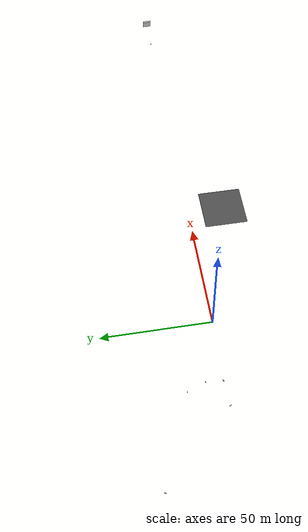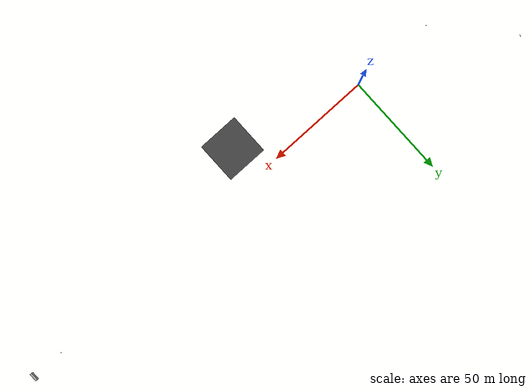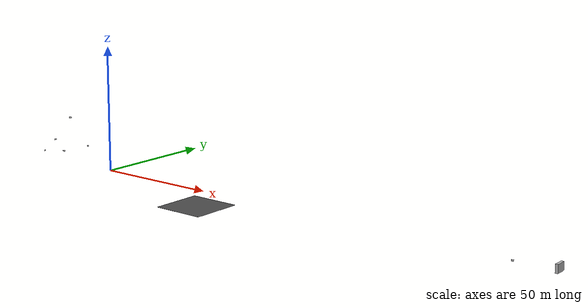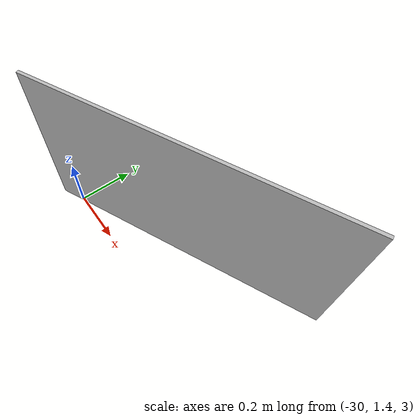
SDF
<sdf version="1.6">
 <world name="default">
  <scene>
   <grid>false</grid>
   <origin_visual>false</origin_visual>
   <ambient>0.592 0.624 0.635 1</ambient>
   <sky><clouds><speed>12</speed></clouds></sky>
   <background>0.35 0.35 0.35 1.0</background>
  </scene>
  <physics name="default_physics" default="0" type="ode">
   <max_step_size>0.005</max_step_size>
   <real_time_factor>1</real_time_factor>
   <real_time_update_rate>200</real_time_update_rate>
  </physics>
  <light type="directional" name="sun">
   <pose>0 0 1000 0 0 0</pose>
   <diffuse>0.8 0.8 0.8 1</diffuse>
   <specular>0.5 0.5 0.5 1</specular>
   <attenuation>
    <range>1000</range>
    <constant>0.9</constant>
    <linear>0.01</linear>
    <quadratic>0.001</quadratic>
   </attenuation>
   <direction>-0.5 0.1 -0.4</direction>
  </light>
  <model name="ground_plane">
   <static>true</static>
   <link name="link">
    <collision name="collision">
     <geometry><plane><normal>0 0 1</normal><size>100 100</size></plane></geometry>
     <surface><friction><ode><mu>100</mu><mu2>50</mu2></ode></friction></surface>
    </collision>
   </link>
  </model>
  <model name="asphalt_plane_74">
   <static>true</static>
   <pose>61.581
    -16.664
    0
    0
    0
    0</pose>
   <link name="link">
    <visual name="visual">
     <geometry><box><size>20
            20
            0.05</size></box></geometry>
     <material>
      <script>
       <uri>model://asphalt_plane/materials/scripts</uri>
       <uri>model://asphalt_plane/materials/textures</uri>
       <name>vrc/asphalt</name>
      </script>
     </material>
    </visual>
   </link>
  </model>
  <include><name>slide-0</name><pose>-31.97 17.09 1.99 0 0 0</pose><uri>model://slide-0</uri></include>
  <include><name>slide-1</name><pose>-35 10.5 15 0 0 0.3597</pose><uri>model://slide-1</uri></include>
  <include><name>slide-10</name><pose>-29.6 1.57 3.03 0 0 0.43</pose><uri>model://slide-10</uri></include>
  <include><name>slide-11</name><pose>-29.6 1.57 3.03 0 0 0.43</pose><uri>model://slide-11</uri></include>
  <include><name>slide-12</name><pose>-29.6 1.57 3.03 0 0 0.43</pose><uri>model://slide-12</uri></include>
  <include><name>slide-13</name><pose>-70.3 32.6 -3.5 0 0 1.15</pose><uri>model://slide-13</uri></include>
  <include><name>slide-14</name><pose>180 0 0 0 0 0</pose><uri>model://slide-14</uri></include>
  <include><name>slide-15</name><pose>196 0 0 0 0 -1.57</pose><uri>model://slide-15</uri></include>
  <include><name>banner-0</name><pose>-40.57 0.72 1.66 0 0 -1.08</pose><uri>model://banner-0</uri></include>
 </world>
</sdf>

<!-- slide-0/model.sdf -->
<sdf version='1.6'>
<model name='slide-0'>
  <static>1</static>
  <link name='link'>
    <pose frame=''>0 0 0.28125 0 -0 0</pose>
    <collision name='collision'>
      <geometry>
        <box>
          <size>1 0.01 0.5625</size>
        </box>
      </geometry>
    </collision>
    <visual name='visual'>
      <geometry>
        <box>
          <size>1 0.01 0.5625</size>
        </box>
      </geometry>
      <material>
        <script>
          <uri>model://slide-0/materials/scripts</uri>
          <uri>model://slide-0/materials/textures</uri>
          <name>Slides/slide_0</name>
        </script>
      </material>
    </visual>
  </link>
</model>
</sdf>

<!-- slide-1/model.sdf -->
<sdf version='1.6'>
<model name='slide-1'>
  <static>1</static>
  <link name='link'>
    <pose frame=''>0 0 0.28125 0 -0 0</pose>
    <collision name='collision'>
      <geometry>
        <box>
          <size>1 0.01 0.5625</size>
        </box>
      </geometry>
    </collision>
    <visual name='visual'>
      <geometry>
        <box>
          <size>1 0.01 0.5625</size>
        </box>
      </geometry>
      <material>
        <script>
          <uri>model://slide-1/materials/scripts</uri>
          <uri>model://slide-1/materials/textures</uri>
          <name>Slides/slide_1</name>
        </script>
      </material>
    </visual>
  </link>
</model>
</sdf>

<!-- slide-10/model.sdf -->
<sdf version='1.6'>
<model name='slide-10'>
  <static>1</static>
  <link name='link'>
    <pose frame=''>0 0 0.28125 0 -0 0</pose>
    <collision name='collision'>
      <geometry>
        <box>
          <size>1 0.01 0.5625</size>
        </box>
      </geometry>
    </collision>
    <visual name='visual'>
      <geometry>
        <box>
          <size>1 0.01 0.5625</size>
        </box>
      </geometry>
      <material>
        <script>
          <uri>model://slide-10/materials/scripts</uri>
          <uri>model://slide-10/materials/textures</uri>
          <name>Slides/slide_10</name>
        </script>
      </material>
    </visual>
  </link>
</model>
</sdf>

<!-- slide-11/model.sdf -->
<sdf version='1.6'>
<model name='slide-11'>
  <static>1</static>
  <link name='link'>
    <pose frame=''>0 0 0.28125 0 -0 0</pose>
    <collision name='collision'>
      <geometry>
        <box>
          <size>1 0.01 0.5625</size>
        </box>
      </geometry>
    </collision>
    <visual name='visual'>
      <geometry>
        <box>
          <size>1 0.01 0.5625</size>
        </box>
      </geometry>
      <material>
        <script>
          <uri>model://slide-11/materials/scripts</uri>
          <uri>model://slide-11/materials/textures</uri>
          <name>Slides/slide_11</name>
        </script>
      </material>
    </visual>
  </link>
</model>
</sdf>

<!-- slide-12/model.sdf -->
<sdf version='1.6'>
<model name='slide-12'>
  <static>1</static>
  <link name='link'>
    <pose frame=''>0 0 0.28125 0 -0 0</pose>
    <collision name='collision'>
      <geometry>
        <box>
          <size>1 0.01 0.5625</size>
        </box>
      </geometry>
    </collision>
    <visual name='visual'>
      <geometry>
        <box>
          <size>1 0.01 0.5625</size>
        </box>
      </geometry>
      <material>
        <script>
          <uri>model://slide-12/materials/scripts</uri>
          <uri>model://slide-12/materials/textures</uri>
          <name>Slides/slide_12</name>
        </script>
      </material>
    </visual>
  </link>
</model>
</sdf>

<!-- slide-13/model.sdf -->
<sdf version='1.6'>
<model name='slide-13'>
  <static>1</static>
  <link name='link'>
    <pose frame=''>0 0 0.28125 0 -0 0</pose>
    <collision name='collision'>
      <geometry>
        <box>
          <size>1 0.01 0.5625</size>
        </box>
      </geometry>
    </collision>
    <visual name='visual'>
      <geometry>
        <box>
          <size>1 0.01 0.5625</size>
        </box>
      </geometry>
      <material>
        <script>
          <uri>model://slide-13/materials/scripts</uri>
          <uri>model://slide-13/materials/textures</uri>
          <name>Slides/slide_13</name>
        </script>
      </material>
    </visual>
  </link>
</model>
</sdf>

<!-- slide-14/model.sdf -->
<sdf version='1.6'>
<model name='slide-14'>
  <static>1</static>
  <link name='link'>
    <pose frame=''>0 0 0.28125 0 -0 0</pose>
    <collision name='collision'>
      <geometry>
        <box>
          <size>1 0.01 0.5625</size>
        </box>
      </geometry>
    </collision>
    <visual name='visual'>
      <geometry>
        <box>
          <size>1 0.01 0.5625</size>
        </box>
      </geometry>
      <material>
        <script>
          <uri>model://slide-14/materials/scripts</uri>
          <uri>model://slide-14/materials/textures</uri>
          <name>Slides/slide_14</name>
        </script>
      </material>
    </visual>
  </link>
</model>
</sdf>

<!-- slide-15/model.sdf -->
<sdf version='1.6'>
<model name='slide-15'>
  <static>1</static>
  <link name='link'>
    <pose frame=''>0 0 1.5 0 -0 0</pose>
    <collision name='collision'>
      <geometry>
        <box>
          <size>4 1 3</size>
        </box>
      </geometry>
    </collision>
    <visual name='visual'>
      <geometry>
        <box>
          <size>4 1 3</size>
        </box>
      </geometry>
      <material>
        <script>
          <uri>model://slide-15/materials/scripts</uri>
          <uri>model://slide-15/materials/textures</uri>
          <name>Slides/slide_15</name>
        </script>
      </material>
    </visual>
  </link>
</model>
</sdf>

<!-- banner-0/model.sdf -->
<sdf version='1.6'>
<model name='banner-0'>
  <static>1</static>
  <link name='link'>
    <pose frame=''>0 0 0.28 0 -0 0</pose>
    <collision name='collision'>
      <geometry>
        <box>
          <size>1 0.01 0.56</size>
        </box>
      </geometry>
    </collision>
    <visual name='visual'>
      <geometry>
        <box>
          <size>1 0.01 0.56</size>
        </box>
      </geometry>
      <material>
        <script>
          <uri>model://banner-0/materials/scripts</uri>
          <uri>model://banner-0/materials/textures</uri>
          <name>Slides/banner_0</name>
        </script>
      </material>
    </visual>
  </link>
</model>
</sdf>
